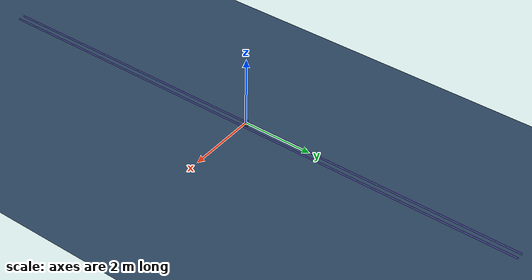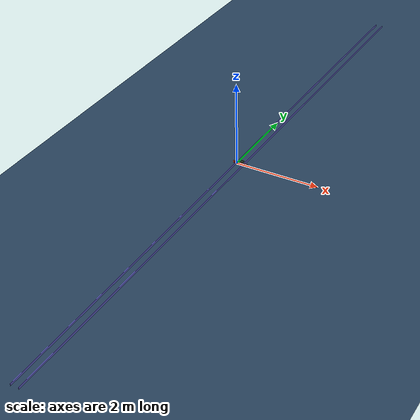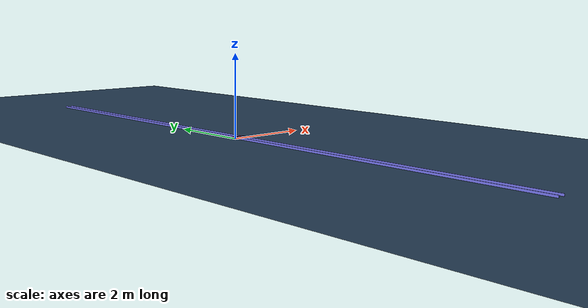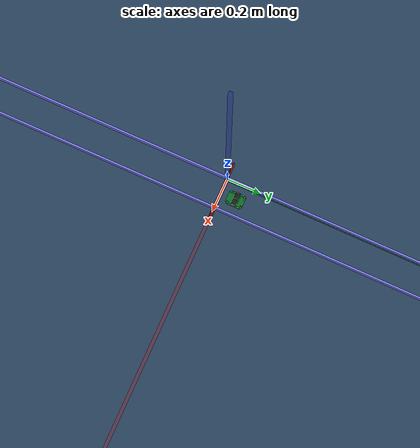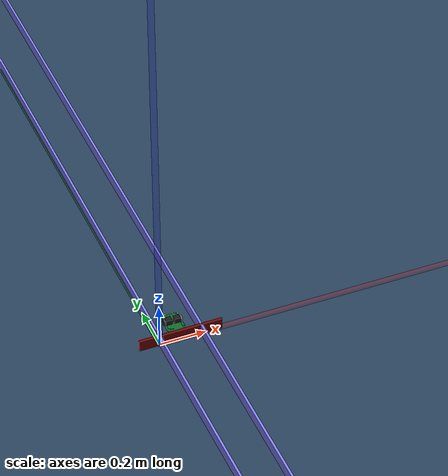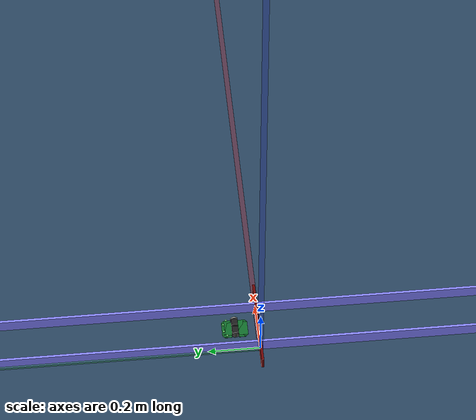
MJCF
<mujoco>
<compiler angle="degree" coordinate="local" inertiafromgeom="true" />
    <option integrator="RK4" timestep="0.01" />
    <visual>
   <quality shadowsize="0" />
</visual>

    <include file="./micromouse.xml"/>
    <include file="./mouse_straight_test_course.xml"/>

</mujoco>

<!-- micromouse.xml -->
<mujoco model="micromouse">
<option>
    </option>
    <worldbody>
        <light diffuse=".5 .5 .5" pos="0 0 10" dir="0 0 -1"/>

         <body pos="0.09 0.09 0.012" euler="0 0 90">
            <freejoint />
            <body name="torso">
                <geom name="mein_body1" type="box" friction="0.0 0.0 0.0" size="0.05 0.03 0.0008" rgba="0.05 0.4 0.15 1" pos="0 0 0.002" mass="4.65e-3"/>
                <geom name="mein_body_chip1" type="box" friction="0.0 0.0 0.0" size="0.00707 0.00707 0.0008" rgba="0.05 0.4 0.15 1" pos="0.04 0.03 0.002" euler="0 0 45" mass="4.65e-3"/>
                <geom name="mein_body_chip2" type="box" friction="0.0 0.0 0.0" size="0.00707 0.00707 0.0008" rgba="0.05 0.4 0.15 1" pos="0.04 -0.03 0.002" euler="0 0 45" mass="4.65e-3"/>
                <geom name="mein_body_chip3" type="box" friction="0.0 0.0 0.0" size="0.00707 0.00707 0.0008" rgba="0.05 0.4 0.15 1" pos="-0.04 0.03 0.002" euler="0 0 45" mass="4.65e-3"/>
                <geom name="mein_body_chip4" type="box" friction="0.0 0.0 0.0" size="0.00707 0.00707 0.0008" rgba="0.05 0.4 0.15 1" pos="-0.04 -0.03 0.002" euler="0 0 45" mass="4.65e-3"/>
                <geom name="mein_body4" type="box" friction="0.0 0.0 0.0" size="0.013 0.04 0.0008"  rgba="0.05 0.4 0.15 1" pos="-0.027 0 0.002" mass="4.65e-3"/>
                <geom name="mein_body5" type="box" friction="0.0 0.0 0.0" size="0.013 0.04 0.0008"  rgba="0.05 0.4 0.15 1" pos="0.027 0 0.002" mass="4.65e-3"/>
                <!--接触判定領域（この中に入ってるgeomが接触すると，センサ値としてその値を取得できる）-->
                <site name = "hit_box1" type = "box" size = "0.02 0.043 0.0008" pos="0.032 0 0.002" rgba="1 1 0 0.0"/>
                <site name = "hit_box2" type = "box" size = "0.02 0.043 0.0008" pos="-0.032 0 0.002" rgba="1 1 0 0.0"/>
            </body>

            <site name="sensor_left_front" type="box" size="0.003 0.003 0.003" pos="0.031 0.036 0.01" zaxis="1 0 0.01" rgba=".5 1 .5 1"/>
              <!-- zaxisの３つめ　0.1でちょい上向き -->
            <site name="sensor_left_side" type="box" size="0.003 0.003 0.003" pos="0.043 0.016 0.01" zaxis="0.25 1 0" rgba=".5 1 .5 1"/>
            <site name="sensor_right_front" type="box" size="0.003 0.003 0.003" pos="0.031 -0.036 0.01" zaxis="1 0 0.01" rgba=".5 1 .5 1"/>
            <site name="sensor_right_side" type="box" size="0.003 0.003 0.003" pos="0.043 -0.016 0.01" zaxis="0.25 -1 0" rgba=".5 1 .5 1"/>
            <site name="accerometer" type="sphere" size="0.001 0.001" pos="0 0 0.0"/>
            <site name="gyro" type="box" size="0.001 0.001 0.001" pos="0 0 0"/>
            <site name="velocimeter" type="box" size="0.001 0.001 0.001" pos="0 0 0"/>

             <body name="left wheel" pos="-0.0 0.036 0.0135" zaxis="0 1 0">
                <joint name="left wheel joint" type="hinge" axis="0 0 1" limited="false" damping='9.6e-5' />
                <geom name="left_wheel" type="cylinder" size="0.0135 0.0035" friction="1.0 0 0"  rgba=".3 .3 0.3 1" mass="5e-3"/>
                <site type="box" size = "0.0012 0.008 0.004" rgba=".5 1 .5 1"/>
            </body>

            <body name="right wheel" pos="-0.0 -0.036 0.0135" zaxis="0 1 0">
                <joint name="right wheel joint" type="hinge" axis="0 0 1" limited="false" damping='9.6e-5' />
                <geom type="cylinder" size="0.0135 0.0035" friction="1.0 0 0" mass="5e-3"/> #直径27mmのタイヤ
                <site type="box" size = "0.0012 0.008 0.004" rgba=".5 1 .5 1"/>
            </body>

            <body name="motorbox1" pos="0 -0.018 0.0135" >
                <geom type="box" size="0.0117 0.0135 0.0117" rgba="0.1 0.1 0.1 1" mass="50e-3"/>
            </body>

            <body name="motorbox2" pos="0 0.018 0.0135">
                <geom type="box" size="0.0117 0.0135 0.0117" rgba="0.1 0.1 0.1 1" mass="50e-3"/>
            </body>

            <!--トラッキングカメラを装着-->
            <camera name="camera_name" mode="track" pos="-0.4 0 0.8" euler="0 -30 -90" fovy="60"/>

        </body>
    </worldbody>

    <actuator>
        <motor name="right" joint="right wheel joint" gear="9.0e-3" ctrllimited="true" ctrlrange="-0.2 0.2"/> ctrlrangeで入力の値の範囲を決められる
        <motor name="left"  joint="left wheel joint"  gear="9.0e-3" ctrllimited="true" ctrlrange="-0.2 0.2"/>
    </actuator>

    <sensor>
        <rangefinder name="LF" site="sensor_left_front" cutoff="0.3"/>
        <rangefinder name="LS" site="sensor_left_side" cutoff="0.3"/>
        <rangefinder name="RF" site="sensor_right_front" cutoff="0.3"/>
        <rangefinder name="RS" site="sensor_right_side" cutoff="0.3"/>
        <touch name = "HB1" site = "hit_box1"/>
        <touch name = "HB2" site = "hit_box2"/>
        <accelerometer name="Accel" site="accerometer"/>
        <gyro name="Gyro" site="gyro" noise="0.001"/>
        <velocimeter name="Veloci" site="velocimeter"/>
    </sensor>

</mujoco>

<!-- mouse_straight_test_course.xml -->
<mujoco>
    <compiler angle="degree" coordinate="local" inertiafromgeom="true" />
    <option integrator="RK4"/>

    <asset>
        <texture type="skybox" builtin="gradient" rgb1="0.3 0.5 0.7" rgb2="0 0 0" width="512" height="3072"/>
        <texture type="2d" name="groundplane" builtin="checker" mark="edge" rgb1="0.2 0.3 0.4" rgb2="0.1 0.2 0.3" markrgb="0.8 0.8 0.8" width="300" height="300"/>
        <material name="groundplane" texture="groundplane" texuniform="true" texrepeat="5 5" reflectance="0.2"/>
    </asset>

    <worldbody>
        <geom type="plane" size="400 400 .01" material="groundplane" friction="0 0 0"/>
        <light pos="0 0 1.5" dir="0 0 -1" directional="true"/>

        <body name="back_wall" pos="0.09 0 0.025" >
            <geom type="box" size="0.18 0.005 0.025" rgba="0.4 0 0 1" />
        </body>
        <body name="right_wall" pos="0.18 0 0.025">
            <geom type="box" size="0.005 8 0.025" rgba=".5 .5 1 1" />
        </body>
        <body name="left_wall" pos="0.0 0 0.025">
            <geom type="box" size="0.005 8 0.025" rgba=".5 .5 1 1" />
        </body>

        <site type="box" rgba="1 0 0 0.1" fromto="0 0 0 2 0 0" size="0.01"/>
        <site type="box" rgba="0 1 0 0.1" fromto="0 0 0 0 2 0" size="0.01"/>
        <site type="box" rgba="0 0 1 0.1" fromto="0 0 0 0 0 2" size="0.01"/> 座標軸表示

    </worldbody>

</mujoco>
